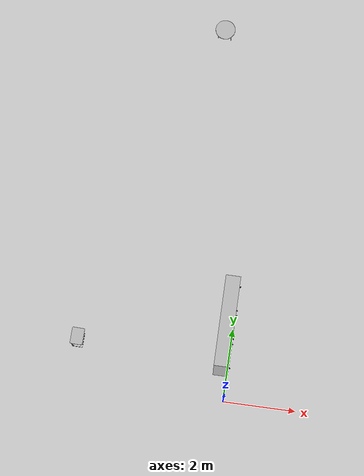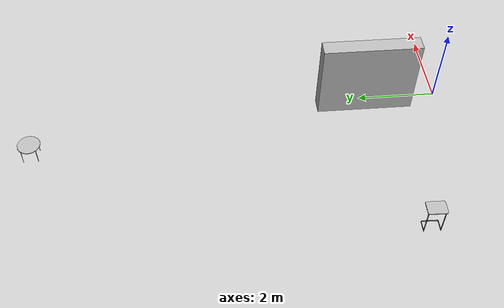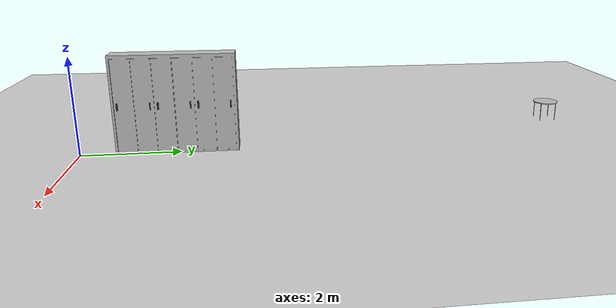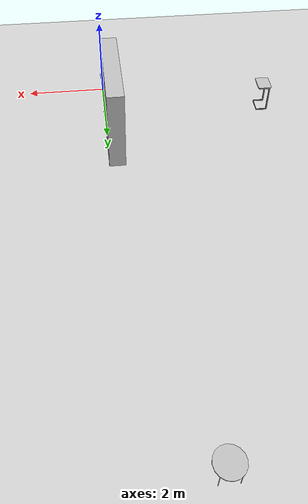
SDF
<sdf version="1.6">
 <world name="default">
  <model name="ground_plane">
   <static>1</static>
   <link name="link">
    <collision name="collision">
     <geometry><plane><normal>0 0 1</normal><size>100 100</size></plane></geometry>
     <surface><friction><ode><mu>100</mu><mu2>50</mu2></ode></friction></surface>
    </collision>
    <visual name="visual">
     <cast_shadows>0</cast_shadows>
     <geometry><plane><normal>0 0 1</normal><size>100 100</size></plane></geometry>
     <material>
      <script><uri>file://media/materials/scripts/gazebo.material</uri><name>Gazebo/Grey</name></script>
     </material>
    </visual>
   </link>
  </model>
  <include>
   <uri>model://rs_gazebo/models/ss_hq4/hall_table</uri>
   <name>hall_table</name>
   <pose>-1.34208 10.4197 0.237286 0 -4e-06 -1.57817</pose>
  </include>
  <include>
   <uri>model://rs_gazebo/models/ss_hq4/414_wardbrode</uri>
   <name>414_wardbrode</name>
   <pose>-0.178337 1.92734 1 1.5e-05 -0 1.57082</pose>
  </include>
  <include>
   <uri>model://rs_gazebo/models/ss_hq4/403_mini_table</uri>
   <name>403_mini_table</name>
   <pose>-4.16602 1.15405 0.348625 0.001236 1e-05 -1.59612</pose>
  </include>
 </world>
</sdf>
